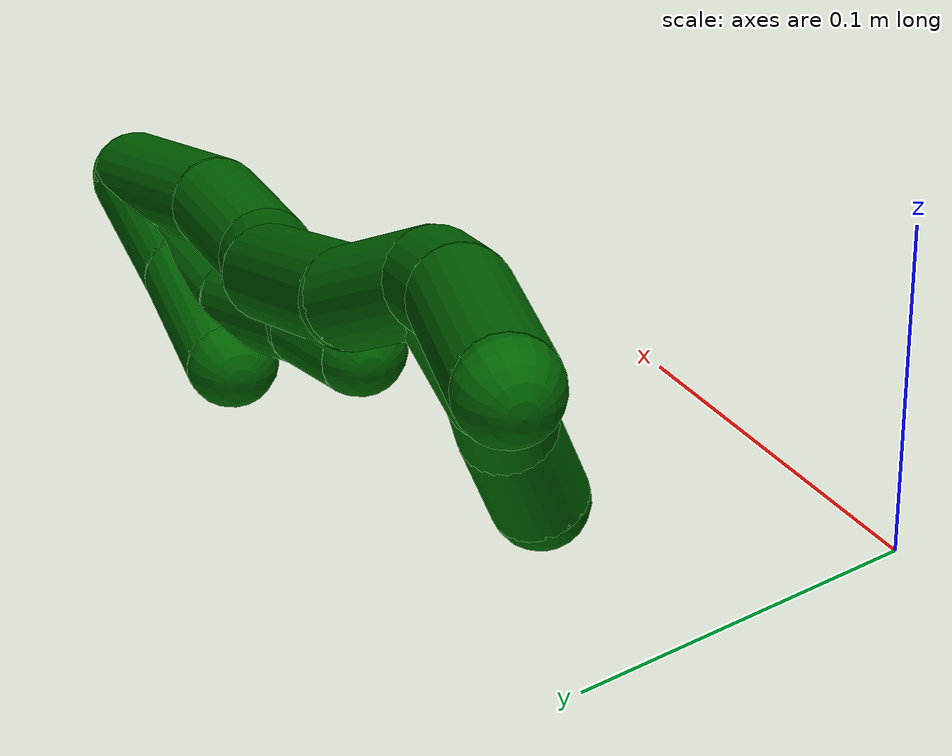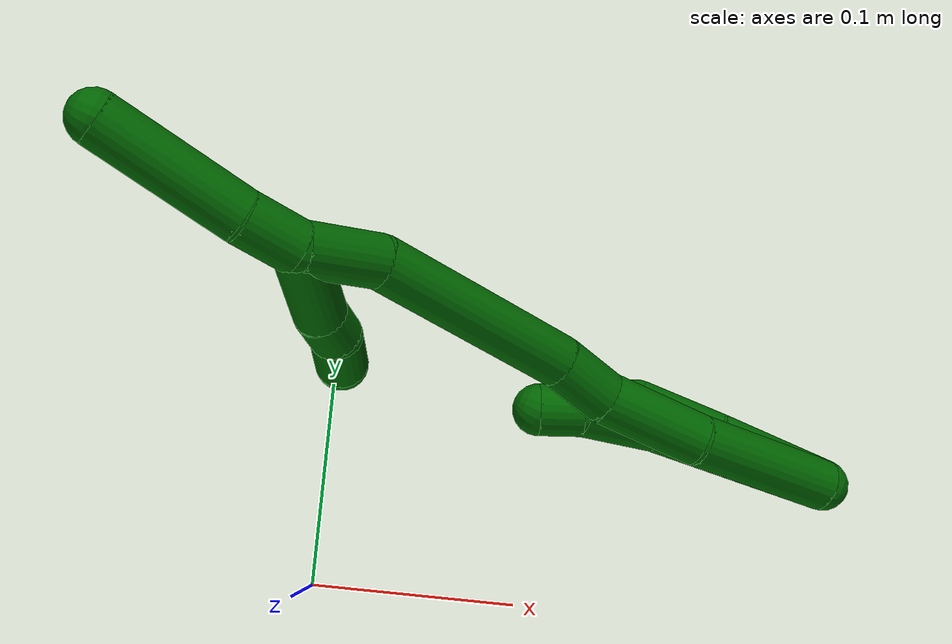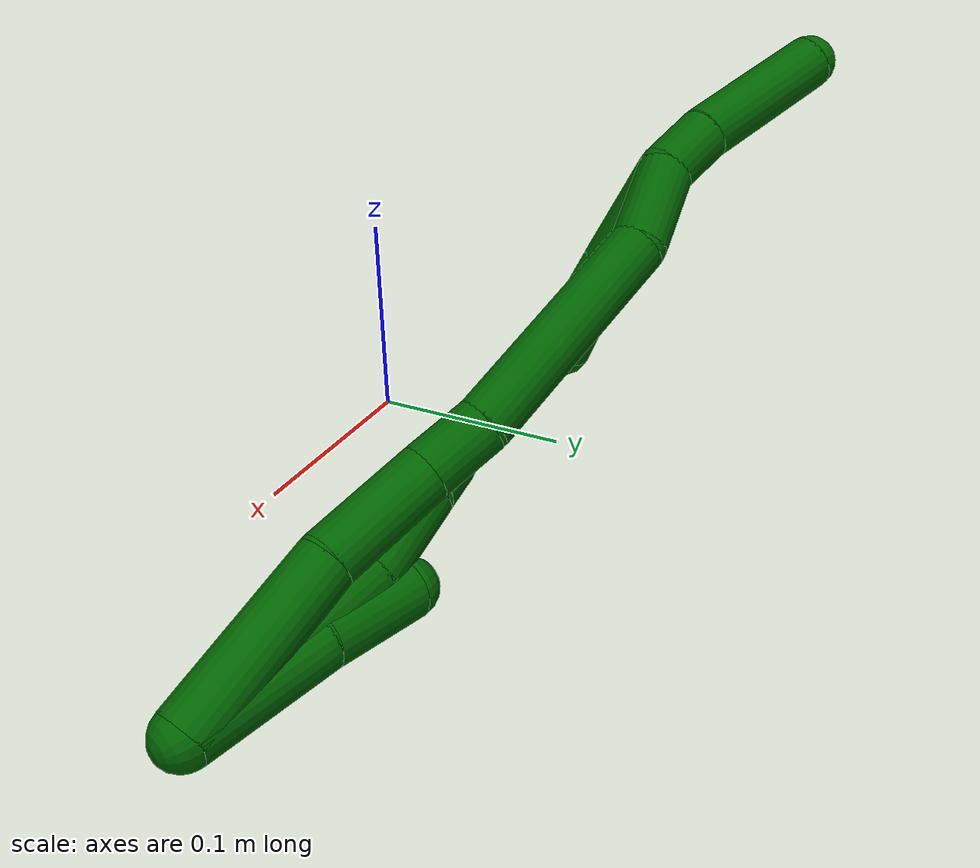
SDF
<sdf version="1.7">
 <world name="default">
  <model name="6">
   <static>0</static>
   <link name="6">
    <collision name="collision-cylinder-e_1_2_8">
     <pose>-0.003935 0.004944 0.044059 -0.111741 -0.088513 0.004954</pose>
     <geometry><cylinder><radius>0.0125</radius><length>0.08902</length></cylinder></geometry>
     <surface>
      <friction><ode><mu>1.16</mu><mu2>1.16</mu2><slip1>0</slip1><slip2>0</slip2></ode></friction>
      <contact><ode><kp>1e+06</kp><kd>1</kd><max_vel>0</max_vel><min_depth>0.001</min_depth></ode></contact>
     </surface>
    </collision>
    <visual name="visual-cylinder-e_1_2_8">
     <pose>-0.003935 0.004944 0.044059 -0.111741 -0.088513 0.004954</pose>
     <geometry><cylinder><radius>0.0125</radius><length>0.08902</length></cylinder></geometry>
     <material><ambient>0 0.392157 0.003922 1</ambient></material>
    </visual>
    <collision name="collision-cylinder-e_2_8_9">
     <pose>-0.014182 0.014031 0.106523 -0.221442 -0.322922 0.036212</pose>
     <geometry><cylinder><radius>0.0125</radius><length>0.039787</length></cylinder></geometry>
     <surface>
      <friction><ode><mu>1.16</mu><mu2>1.16</mu2><slip1>0</slip1><slip2>0</slip2></ode></friction>
      <contact><ode><kp>1e+06</kp><kd>1</kd><max_vel>0</max_vel><min_depth>0.001</min_depth></ode></contact>
     </surface>
    </collision>
    <visual name="visual-cylinder-e_2_8_9">
     <pose>-0.014182 0.014031 0.106523 -0.221442 -0.322922 0.036212</pose>
     <geometry><cylinder><radius>0.0125</radius><length>0.039787</length></cylinder></geometry>
     <material><ambient>0 0.392157 0.003922 1</ambient></material>
    </visual>
    <collision name="collision-cylinder-e_3_9_6">
     <pose>-0.020975 0.022523 0.134579 -0.423297 -0.045269 0.009728</pose>
     <geometry><cylinder><radius>0.0125</radius><length>0.021193</length></cylinder></geometry>
     <surface>
      <friction><ode><mu>1.16</mu><mu2>1.16</mu2><slip1>0</slip1><slip2>0</slip2></ode></friction>
      <contact><ode><kp>1e+06</kp><kd>1</kd><max_vel>0</max_vel><min_depth>0.001</min_depth></ode></contact>
     </surface>
    </collision>
    <visual name="visual-cylinder-e_3_9_6">
     <pose>-0.020975 0.022523 0.134579 -0.423297 -0.045269 0.009728</pose>
     <geometry><cylinder><radius>0.0125</radius><length>0.021193</length></cylinder></geometry>
     <material><ambient>0 0.392157 0.003922 1</ambient></material>
    </visual>
    <collision name="collision-cylinder-e_1_2_10">
     <pose>1e-06 0.001108 0.028942 -0.038267 2.1e-05 0</pose>
     <geometry><cylinder><radius>0.0125</radius><length>0.057926</length></cylinder></geometry>
     <surface>
      <friction><ode><mu>1.16</mu><mu2>1.16</mu2><slip1>0</slip1><slip2>0</slip2></ode></friction>
      <contact><ode><kp>1e+06</kp><kd>1</kd><max_vel>0</max_vel><min_depth>0.001</min_depth></ode></contact>
     </surface>
    </collision>
    <visual name="visual-cylinder-e_1_2_10">
     <pose>1e-06 0.001108 0.028942 -0.038267 2.1e-05 0</pose>
     <geometry><cylinder><radius>0.0125</radius><length>0.057926</length></cylinder></geometry>
     <material><ambient>0 0.392157 0.003922 1</ambient></material>
    </visual>
    <collision name="collision-cylinder-e_2_10_5">
     <pose>0.002387 0.003473 0.078747 -0.060166 0.11364 -0.003423</pose>
     <geometry><cylinder><radius>0.0125</radius><length>0.042074</length></cylinder></geometry>
     <surface>
      <friction><ode><mu>1.16</mu><mu2>1.16</mu2><slip1>0</slip1><slip2>0</slip2></ode></friction>
      <contact><ode><kp>1e+06</kp><kd>1</kd><max_vel>0</max_vel><min_depth>0.001</min_depth></ode></contact>
     </surface>
    </collision>
    <visual name="visual-cylinder-e_2_10_5">
     <pose>0.002387 0.003473 0.078747 -0.060166 0.11364 -0.003423</pose>
     <geometry><cylinder><radius>0.0125</radius><length>0.042074</length></cylinder></geometry>
     <material><ambient>0 0.392157 0.003922 1</ambient></material>
    </visual>
    <collision name="collision-cylinder-e_1_2_11">
     <pose>-0.013275 0.003166 0.034704 -0.090988 -0.363975 0.016755</pose>
     <geometry><cylinder><radius>0.0125</radius><length>0.074583</length></cylinder></geometry>
     <surface>
      <friction><ode><mu>1.16</mu><mu2>1.16</mu2><slip1>0</slip1><slip2>0</slip2></ode></friction>
      <contact><ode><kp>1e+06</kp><kd>1</kd><max_vel>0</max_vel><min_depth>0.001</min_depth></ode></contact>
     </surface>
    </collision>
    <visual name="visual-cylinder-e_1_2_11">
     <pose>-0.013275 0.003166 0.034704 -0.090988 -0.363975 0.016755</pose>
     <geometry><cylinder><radius>0.0125</radius><length>0.074583</length></cylinder></geometry>
     <material><ambient>0 0.392157 0.003922 1</ambient></material>
    </visual>
    <collision name="collision-cylinder-e_2_11_12">
     <pose>-0.031826 0.006917 0.09464 -0.023139 -0.206058 0.002393</pose>
     <geometry><cylinder><radius>0.0125</radius><length>0.051566</length></cylinder></geometry>
     <surface>
      <friction><ode><mu>1.16</mu><mu2>1.16</mu2><slip1>0</slip1><slip2>0</slip2></ode></friction>
      <contact><ode><kp>1e+06</kp><kd>1</kd><max_vel>0</max_vel><min_depth>0.001</min_depth></ode></contact>
     </surface>
    </collision>
    <visual name="visual-cylinder-e_2_11_12">
     <pose>-0.031826 0.006917 0.09464 -0.023139 -0.206058 0.002393</pose>
     <geometry><cylinder><radius>0.0125</radius><length>0.051566</length></cylinder></geometry>
     <material><ambient>0 0.392157 0.003922 1</ambient></material>
    </visual>
    <collision name="collision-cylinder-e_3_12_13">
     <pose>-0.042107 0.004567 0.133595 0.210585 -0.342562 -0.036557</pose>
     <geometry><cylinder><radius>0.0125</radius><length>0.029801</length></cylinder></geometry>
     <surface>
      <friction><ode><mu>1.16</mu><mu2>1.16</mu2><slip1>0</slip1><slip2>0</slip2></ode></friction>
      <contact><ode><kp>1e+06</kp><kd>1</kd><max_vel>0</max_vel><min_depth>0.001</min_depth></ode></contact>
     </surface>
    </collision>
    <visual name="visual-cylinder-e_3_12_13">
     <pose>-0.042107 0.004567 0.133595 0.210585 -0.342562 -0.036557</pose>
     <geometry><cylinder><radius>0.0125</radius><length>0.029801</length></cylinder></geometry>
     <material><ambient>0 0.392157 0.003922 1</ambient></material>
    </visual>
    <collision name="collision-cylinder-e_4_13_14">
     <pose>-0.068762 -0.001053 0.194206 0.057231 -0.431961 -0.01256</pose>
     <geometry><cylinder><radius>0.0125</radius><length>0.103428</length></cylinder></geometry>
     <surface>
      <friction><ode><mu>1.16</mu><mu2>1.16</mu2><slip1>0</slip1><slip2>0</slip2></ode></friction>
      <contact><ode><kp>1e+06</kp><kd>1</kd><max_vel>0</max_vel><min_depth>0.001</min_depth></ode></contact>
     </surface>
    </collision>
    <visual name="visual-cylinder-e_4_13_14">
     <pose>-0.068762 -0.001053 0.194206 0.057231 -0.431961 -0.01256</pose>
     <geometry><cylinder><radius>0.0125</radius><length>0.103428</length></cylinder></geometry>
     <material><ambient>0 0.392157 0.003922 1</ambient></material>
    </visual>
    <collision name="collision-cylinder-e_5_14_1">
     <pose>-0.101243 0.001226 0.257543 -0.293188 -0.562442 0.085256</pose>
     <geometry><cylinder><radius>0.0125</radius><length>0.040622</length></cylinder></geometry>
     <surface>
      <friction><ode><mu>1.16</mu><mu2>1.16</mu2><slip1>0</slip1><slip2>0</slip2></ode></friction>
      <contact><ode><kp>1e+06</kp><kd>1</kd><max_vel>0</max_vel><min_depth>0.001</min_depth></ode></contact>
     </surface>
    </collision>
    <visual name="visual-cylinder-e_5_14_1">
     <pose>-0.101243 0.001226 0.257543 -0.293188 -0.562442 0.085256</pose>
     <geometry><cylinder><radius>0.0125</radius><length>0.040622</length></cylinder></geometry>
     <material><ambient>0 0.392157 0.003922 1</ambient></material>
    </visual>
    <collision name="collision-cylinder-e_1_1_15">
     <pose>-0.091235 0.017507 0.264689 -2.25891 0.958126 -1.6655</pose>
     <geometry><cylinder><radius>0.0125</radius><length>0.050943</length></cylinder></geometry>
     <surface>
      <friction><ode><mu>1.16</mu><mu2>1.16</mu2><slip1>0</slip1><slip2>0</slip2></ode></friction>
      <contact><ode><kp>1e+06</kp><kd>1</kd><max_vel>0</max_vel><min_depth>0.001</min_depth></ode></contact>
     </surface>
    </collision>
    <visual name="visual-cylinder-e_1_1_15">
     <pose>-0.091235 0.017507 0.264689 -2.25891 0.958126 -1.6655</pose>
     <geometry><cylinder><radius>0.0125</radius><length>0.050943</length></cylinder></geometry>
     <material><ambient>0 0.392157 0.003922 1</ambient></material>
    </visual>
    <collision name="collision-cylinder-e_2_15_16">
     <pose>-0.062342 0.032154 0.250271 -2.56415 0.922177 -2.0639</pose>
     <geometry><cylinder><radius>0.0125</radius><length>0.020215</length></cylinder></geometry>
     <surface>
      <friction><ode><mu>1.16</mu><mu2>1.16</mu2><slip1>0</slip1><slip2>0</slip2></ode></friction>
      <contact><ode><kp>1e+06</kp><kd>1</kd><max_vel>0</max_vel><min_depth>0.001</min_depth></ode></contact>
     </surface>
    </collision>
    <visual name="visual-cylinder-e_2_15_16">
     <pose>-0.062342 0.032154 0.250271 -2.56415 0.922177 -2.0639</pose>
     <geometry><cylinder><radius>0.0125</radius><length>0.020215</length></cylinder></geometry>
     <material><ambient>0 0.392157 0.003922 1</ambient></material>
    </visual>
    <collision name="collision-cylinder-e_3_16_4">
     <pose>-0.041774 0.041504 0.241259 -2.14541 1.05058 -1.63448</pose>
     <geometry><cylinder><radius>0.0125</radius><length>0.028842</length></cylinder></geometry>
     <surface>
      <friction><ode><mu>1.16</mu><mu2>1.16</mu2><slip1>0</slip1><slip2>0</slip2></ode></friction>
      <contact><ode><kp>1e+06</kp><kd>1</kd><max_vel>0</max_vel><min_depth>0.001</min_depth></ode></contact>
     </surface>
    </collision>
    <visual name="visual-cylinder-e_3_16_4">
     <pose>-0.041774 0.041504 0.241259 -2.14541 1.05058 -1.63448</pose>
     <geometry><cylinder><radius>0.0125</radius><length>0.028842</length></cylinder></geometry>
     <material><ambient>0 0.392157 0.003922 1</ambient></material>
    </visual>
    <collision name="collision-cylinder-e_1_1_17">
     <pose>-0.116839 0.005347 0.287225 0.063819 -0.344977 -0.011122</pose>
     <geometry><cylinder><radius>0.0125</radius><length>0.028181</length></cylinder></geometry>
     <surface>
      <friction><ode><mu>1.16</mu><mu2>1.16</mu2><slip1>0</slip1><slip2>0</slip2></ode></friction>
      <contact><ode><kp>1e+06</kp><kd>1</kd><max_vel>0</max_vel><min_depth>0.001</min_depth></ode></contact>
     </surface>
    </collision>
    <visual name="visual-cylinder-e_1_1_17">
     <pose>-0.116839 0.005347 0.287225 0.063819 -0.344977 -0.011122</pose>
     <geometry><cylinder><radius>0.0125</radius><length>0.028181</length></cylinder></geometry>
     <material><ambient>0 0.392157 0.003922 1</ambient></material>
    </visual>
    <collision name="collision-cylinder-e_2_17_3">
     <pose>-0.129824 -0.00052 0.335052 0.144118 -0.23095 -0.016745</pose>
     <geometry><cylinder><radius>0.0125</radius><length>0.071819</length></cylinder></geometry>
     <surface>
      <friction><ode><mu>1.16</mu><mu2>1.16</mu2><slip1>0</slip1><slip2>0</slip2></ode></friction>
      <contact><ode><kp>1e+06</kp><kd>1</kd><max_vel>0</max_vel><min_depth>0.001</min_depth></ode></contact>
     </surface>
    </collision>
    <visual name="visual-cylinder-e_2_17_3">
     <pose>-0.129824 -0.00052 0.335052 0.144118 -0.23095 -0.016745</pose>
     <geometry><cylinder><radius>0.0125</radius><length>0.071819</length></cylinder></geometry>
     <material><ambient>0 0.392157 0.003922 1</ambient></material>
    </visual>
    <collision name="collision-sphere-3">
     <pose>-0.138044 -0.00554 0.369646 0 -0 0</pose>
     <geometry><sphere><radius>0.0125</radius></sphere></geometry>
     <surface>
      <friction><ode><mu>1.16</mu><mu2>1.16</mu2><slip1>0</slip1><slip2>0</slip2></ode></friction>
      <contact><ode><kp>1e+06</kp><kd>1</kd><max_vel>0</max_vel><min_depth>0.001</min_depth></ode></contact>
     </surface>
    </collision>
    <visual name="visual-sphere-3">
     <pose>-0.138044 -0.00554 0.369646 0 -0 0</pose>
     <geometry><sphere><radius>0.0125</radius></sphere></geometry>
     <material><ambient>0 0.392157 0.003922 1</ambient></material>
    </visual>
    <collision name="collision-sphere-17">
     <pose>-0.121604 0.004501 0.300458 0 -0 0</pose>
     <geometry><sphere><radius>0.0125</radius></sphere></geometry>
     <surface>
      <friction><ode><mu>1.16</mu><mu2>1.16</mu2><slip1>0</slip1><slip2>0</slip2></ode></friction>
      <contact><ode><kp>1e+06</kp><kd>1</kd><max_vel>0</max_vel><min_depth>0.001</min_depth></ode></contact>
     </surface>
    </collision>
    <visual name="visual-sphere-17">
     <pose>-0.121604 0.004501 0.300458 0 -0 0</pose>
     <geometry><sphere><radius>0.0125</radius></sphere></geometry>
     <material><ambient>0 0.392157 0.003922 1</ambient></material>
    </visual>
    <collision name="collision-sphere-4">
     <pose>-0.02926 0.047521 0.237363 0 -0 0</pose>
     <geometry><sphere><radius>0.0125</radius></sphere></geometry>
     <surface>
      <friction><ode><mu>1.16</mu><mu2>1.16</mu2><slip1>0</slip1><slip2>0</slip2></ode></friction>
      <contact><ode><kp>1e+06</kp><kd>1</kd><max_vel>0</max_vel><min_depth>0.001</min_depth></ode></contact>
     </surface>
    </collision>
    <visual name="visual-sphere-4">
     <pose>-0.02926 0.047521 0.237363 0 -0 0</pose>
     <geometry><sphere><radius>0.0125</radius></sphere></geometry>
     <material><ambient>0 0.392157 0.003922 1</ambient></material>
    </visual>
    <collision name="collision-sphere-16">
     <pose>-0.054287 0.035487 0.245155 0 -0 0</pose>
     <geometry><sphere><radius>0.0125</radius></sphere></geometry>
     <surface>
      <friction><ode><mu>1.16</mu><mu2>1.16</mu2><slip1>0</slip1><slip2>0</slip2></ode></friction>
      <contact><ode><kp>1e+06</kp><kd>1</kd><max_vel>0</max_vel><min_depth>0.001</min_depth></ode></contact>
     </surface>
    </collision>
    <visual name="visual-sphere-16">
     <pose>-0.054287 0.035487 0.245155 0 -0 0</pose>
     <geometry><sphere><radius>0.0125</radius></sphere></geometry>
     <material><ambient>0 0.392157 0.003922 1</ambient></material>
    </visual>
    <collision name="collision-sphere-15">
     <pose>-0.070397 0.028821 0.255387 0 -0 0</pose>
     <geometry><sphere><radius>0.0125</radius></sphere></geometry>
     <surface>
      <friction><ode><mu>1.16</mu><mu2>1.16</mu2><slip1>0</slip1><slip2>0</slip2></ode></friction>
      <contact><ode><kp>1e+06</kp><kd>1</kd><max_vel>0</max_vel><min_depth>0.001</min_depth></ode></contact>
     </surface>
    </collision>
    <visual name="visual-sphere-15">
     <pose>-0.070397 0.028821 0.255387 0 -0 0</pose>
     <geometry><sphere><radius>0.0125</radius></sphere></geometry>
     <material><ambient>0 0.392157 0.003922 1</ambient></material>
    </visual>
    <collision name="collision-sphere-1">
     <pose>-0.112074 0.006192 0.273992 0 -0 0</pose>
     <geometry><sphere><radius>0.0125</radius></sphere></geometry>
     <surface>
      <friction><ode><mu>1.16</mu><mu2>1.16</mu2><slip1>0</slip1><slip2>0</slip2></ode></friction>
      <contact><ode><kp>1e+06</kp><kd>1</kd><max_vel>0</max_vel><min_depth>0.001</min_depth></ode></contact>
     </surface>
    </collision>
    <visual name="visual-sphere-1">
     <pose>-0.112074 0.006192 0.273992 0 -0 0</pose>
     <geometry><sphere><radius>0.0125</radius></sphere></geometry>
     <material><ambient>0 0.392157 0.003922 1</ambient></material>
    </visual>
    <collision name="collision-sphere-14">
     <pose>-0.090412 -0.003739 0.241094 0 -0 0</pose>
     <geometry><sphere><radius>0.0125</radius></sphere></geometry>
     <surface>
      <friction><ode><mu>1.16</mu><mu2>1.16</mu2><slip1>0</slip1><slip2>0</slip2></ode></friction>
      <contact><ode><kp>1e+06</kp><kd>1</kd><max_vel>0</max_vel><min_depth>0.001</min_depth></ode></contact>
     </surface>
    </collision>
    <visual name="visual-sphere-14">
     <pose>-0.090412 -0.003739 0.241094 0 -0 0</pose>
     <geometry><sphere><radius>0.0125</radius></sphere></geometry>
     <material><ambient>0 0.392157 0.003922 1</ambient></material>
    </visual>
    <collision name="collision-sphere-13">
     <pose>-0.047112 0.001633 0.147319 0 -0 0</pose>
     <geometry><sphere><radius>0.0125</radius></sphere></geometry>
     <surface>
      <friction><ode><mu>1.16</mu><mu2>1.16</mu2><slip1>0</slip1><slip2>0</slip2></ode></friction>
      <contact><ode><kp>1e+06</kp><kd>1</kd><max_vel>0</max_vel><min_depth>0.001</min_depth></ode></contact>
     </surface>
    </collision>
    <visual name="visual-sphere-13">
     <pose>-0.047112 0.001633 0.147319 0 -0 0</pose>
     <geometry><sphere><radius>0.0125</radius></sphere></geometry>
     <material><ambient>0 0.392157 0.003922 1</ambient></material>
    </visual>
    <collision name="collision-sphere-12">
     <pose>-0.037102 0.007501 0.11987 0 -0 0</pose>
     <geometry><sphere><radius>0.0125</radius></sphere></geometry>
     <surface>
      <friction><ode><mu>1.16</mu><mu2>1.16</mu2><slip1>0</slip1><slip2>0</slip2></ode></friction>
      <contact><ode><kp>1e+06</kp><kd>1</kd><max_vel>0</max_vel><min_depth>0.001</min_depth></ode></contact>
     </surface>
    </collision>
    <visual name="visual-sphere-12">
     <pose>-0.037102 0.007501 0.11987 0 -0 0</pose>
     <geometry><sphere><radius>0.0125</radius></sphere></geometry>
     <material><ambient>0 0.392157 0.003922 1</ambient></material>
    </visual>
    <collision name="collision-sphere-11">
     <pose>-0.026551 0.006333 0.069409 0 -0 0</pose>
     <geometry><sphere><radius>0.0125</radius></sphere></geometry>
     <surface>
      <friction><ode><mu>1.16</mu><mu2>1.16</mu2><slip1>0</slip1><slip2>0</slip2></ode></friction>
      <contact><ode><kp>1e+06</kp><kd>1</kd><max_vel>0</max_vel><min_depth>0.001</min_depth></ode></contact>
     </surface>
    </collision>
    <visual name="visual-sphere-11">
     <pose>-0.026551 0.006333 0.069409 0 -0 0</pose>
     <geometry><sphere><radius>0.0125</radius></sphere></geometry>
     <material><ambient>0 0.392157 0.003922 1</ambient></material>
    </visual>
    <collision name="collision-sphere-8">
     <pose>-0.007869 0.009888 0.088118 0 -0 0</pose>
     <geometry><sphere><radius>0.0125</radius></sphere></geometry>
     <surface>
      <friction><ode><mu>1.16</mu><mu2>1.16</mu2><slip1>0</slip1><slip2>0</slip2></ode></friction>
      <contact><ode><kp>1e+06</kp><kd>1</kd><max_vel>0</max_vel><min_depth>0.001</min_depth></ode></contact>
     </surface>
    </collision>
    <visual name="visual-sphere-8">
     <pose>-0.007869 0.009888 0.088118 0 -0 0</pose>
     <geometry><sphere><radius>0.0125</radius></sphere></geometry>
     <material><ambient>0 0.392157 0.003922 1</ambient></material>
    </visual>
    <collision name="collision-sphere-2">
     <geometry><sphere><radius>0.0125</radius></sphere></geometry>
     <surface>
      <friction><ode><mu>1.16</mu><mu2>1.16</mu2><slip1>0</slip1><slip2>0</slip2></ode></friction>
      <contact><ode><kp>1e+06</kp><kd>1</kd><max_vel>0</max_vel><min_depth>0.001</min_depth></ode></contact>
     </surface>
    </collision>
    <visual name="visual-sphere-2">
     <geometry><sphere><radius>0.0125</radius></sphere></geometry>
     <material><ambient>0 0.392157 0.003922 1</ambient></material>
    </visual>
    <collision name="collision-sphere-9">
     <pose>-0.020495 0.018175 0.124927 0 -0 0</pose>
     <geometry><sphere><radius>0.0125</radius></sphere></geometry>
     <surface>
      <friction><ode><mu>1.16</mu><mu2>1.16</mu2><slip1>0</slip1><slip2>0</slip2></ode></friction>
      <contact><ode><kp>1e+06</kp><kd>1</kd><max_vel>0</max_vel><min_depth>0.001</min_depth></ode></contact>
     </surface>
    </collision>
    <visual name="visual-sphere-9">
     <pose>-0.020495 0.018175 0.124927 0 -0 0</pose>
     <geometry><sphere><radius>0.0125</radius></sphere></geometry>
     <material><ambient>0 0.392157 0.003922 1</ambient></material>
    </visual>
    <collision name="collision-sphere-6">
     <pose>-0.021454 0.026871 0.14423 0 -0 0</pose>
     <geometry><sphere><radius>0.0125</radius></sphere></geometry>
     <surface>
      <friction><ode><mu>1.16</mu><mu2>1.16</mu2><slip1>0</slip1><slip2>0</slip2></ode></friction>
      <contact><ode><kp>1e+06</kp><kd>1</kd><max_vel>0</max_vel><min_depth>0.001</min_depth></ode></contact>
     </surface>
    </collision>
    <visual name="visual-sphere-6">
     <pose>-0.021454 0.026871 0.14423 0 -0 0</pose>
     <geometry><sphere><radius>0.0125</radius></sphere></geometry>
     <material><ambient>0 0.392157 0.003922 1</ambient></material>
    </visual>
    <collision name="collision-sphere-10">
     <pose>1e-06 0.002216 0.057884 0 -0 0</pose>
     <geometry><sphere><radius>0.0125</radius></sphere></geometry>
     <surface>
      <friction><ode><mu>1.16</mu><mu2>1.16</mu2><slip1>0</slip1><slip2>0</slip2></ode></friction>
      <contact><ode><kp>1e+06</kp><kd>1</kd><max_vel>0</max_vel><min_depth>0.001</min_depth></ode></contact>
     </surface>
    </collision>
    <visual name="visual-sphere-10">
     <pose>1e-06 0.002216 0.057884 0 -0 0</pose>
     <geometry><sphere><radius>0.0125</radius></sphere></geometry>
     <material><ambient>0 0.392157 0.003922 1</ambient></material>
    </visual>
    <collision name="collision-sphere-5">
     <pose>0.004772 0.00473 0.099611 0 -0 0</pose>
     <geometry><sphere><radius>0.0125</radius></sphere></geometry>
     <surface>
      <friction><ode><mu>1.16</mu><mu2>1.16</mu2><slip1>0</slip1><slip2>0</slip2></ode></friction>
      <contact><ode><kp>1e+06</kp><kd>1</kd><max_vel>0</max_vel><min_depth>0.001</min_depth></ode></contact>
     </surface>
    </collision>
    <visual name="visual-sphere-5">
     <pose>0.004772 0.00473 0.099611 0 -0 0</pose>
     <geometry><sphere><radius>0.0125</radius></sphere></geometry>
     <material><ambient>0 0.392157 0.003922 1</ambient></material>
    </visual>
    <inertial>
     <pose>-0.048131 0.006944 0.154213 0 -0 0</pose>
     <mass>0.75</mass>
     <inertia><ixx>0.00026</ixx><ixy>0</ixy><ixz>0</ixz><iyy>0.000298</iyy><iyz>0</iyz><izz>9.5e-05</izz></inertia>
    </inertial>
   </link>
   <pose>0.245314 0.074443 0.01184 -0.780902 1.44658 2.00867</pose>
  </model>
 </world>
</sdf>
